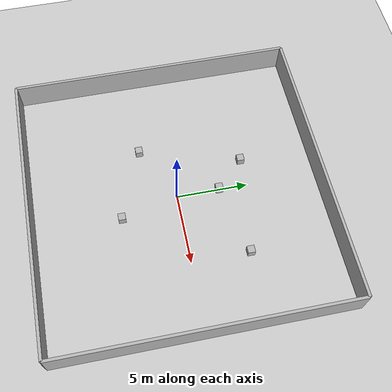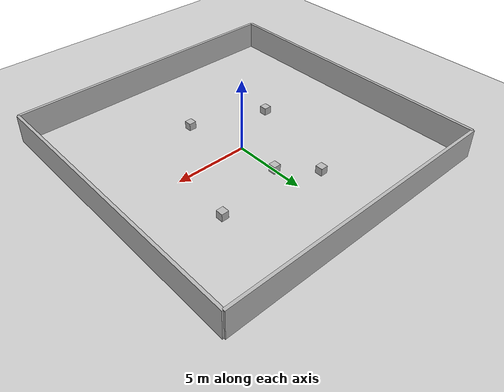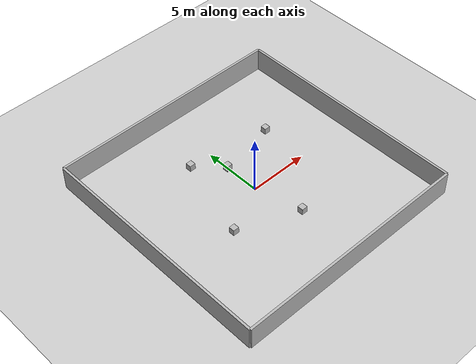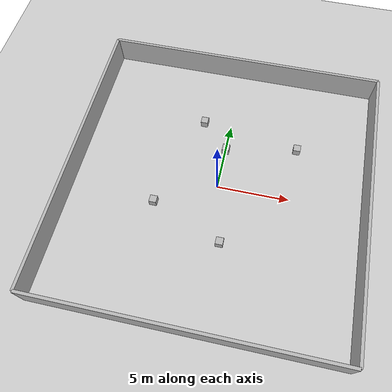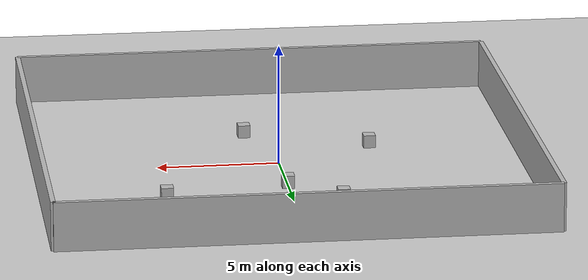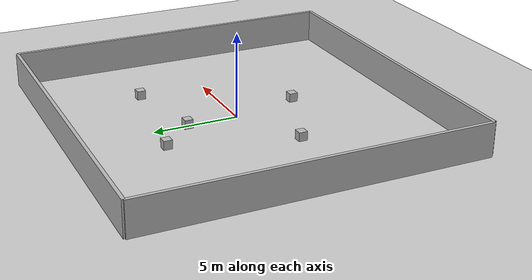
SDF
<?xml version="1.0"?>
<sdf version="1.6">
  <world name="room_with_obstacles">
    <include>
      <uri>model://sun</uri>
    </include>
    <include>
      <uri>model://ground_plane</uri>
    </include>

    <!-- Walls -->
    <model name="wall_north">
      <static>true</static>
      <link name="link">
        <collision name="collision">
          <geometry>
            <box>
              <size>20 0.2 2</size>
            </box>
          </geometry>
        </collision>
        <visual name="visual">
          <geometry>
            <box>
              <size>20 0.2 2</size>
            </box>
          </geometry>
        </visual>
        <pose>0 10 1 0 0 0</pose>
      </link>
    </model>

    <model name="wall_south">
      <static>true</static>
      <link name="link">
        <collision name="collision">
          <geometry>
            <box>
              <size>20 0.2 2</size>
            </box>
          </geometry>
        </collision>
        <visual name="visual">
          <geometry>
            <box>
              <size>20 0.2 2</size>
            </box>
          </geometry>
        </visual>
        <pose>0 -10 1 0 0 0</pose>
      </link>
    </model>

    <model name="wall_east">
      <static>true</static>
      <link name="link">
        <collision name="collision">
          <geometry>
            <box>
              <size>0.2 20 2</size>
            </box>
          </geometry>
        </collision>
        <visual name="visual">
          <geometry>
            <box>
              <size>0.2 20 2</size>
            </box>
          </geometry>
        </visual>
        <pose>10 0 1 0 0 0</pose>
      </link>
    </model>

    <model name="wall_west">
      <static>true</static>
      <link name="link">
        <collision name="collision">
          <geometry>
            <box>
              <size>0.2 20 2</size>
            </box>
          </geometry>
        </collision>
        <visual name="visual">
          <geometry>
            <box>
              <size>0.2 20 2</size>
            </box>
          </geometry>
        </visual>
        <pose>-10 0 1 0 0 0</pose>
      </link>
    </model>

    <!-- Example Obstacle -->
    <model name="obstacle_1">
      <static>true</static>
      <pose>0 3 0 0 0 0</pose>
      <link name="link">
        <collision name="collision">
          <geometry>
            <box>
              <size>0.5 0.5 1</size>
            </box>
          </geometry>
        </collision>
        <visual name="visual">
          <geometry>
            <box>
              <size>0.5 0.5 1</size>
            </box>
          </geometry>
        </visual>
      </link>
    </model>

    <model name="obstacle_2">
      <static>true</static>
      <pose>1 -4 0 0 0 0</pose>
      <link name="link">
        <collision name="collision">
          <geometry>
            <box>
              <size>0.5 0.5 1</size>
            </box>
          </geometry>
        </collision>
        <visual name="visual">
          <geometry>
            <box>
              <size>0.5 0.5 1</size>
            </box>
          </geometry>
        </visual>
      </link>
    </model>

    <model name="obstacle_3">
      <static>true</static>
      <pose>5 4 0 0 0 0</pose>
      <link name="link">
        <collision name="collision">
          <geometry>
            <box>
              <size>0.5 0.5 1</size>
            </box>
          </geometry>
        </collision>
        <visual name="visual">
          <geometry>
            <box>
              <size>0.5 0.5 1</size>
            </box>
          </geometry>
        </visual>
      </link>
    </model>

    <model name="obstacle_4">
      <static>true</static>
      <pose>-4 -2 0 0 0 0</pose>
      <link name="link">
        <collision name="collision">
          <geometry>
            <box>
              <size>0.5 0.5 1</size>
            </box>
          </geometry>
        </collision>
        <visual name="visual">
          <geometry>
            <box>
              <size>0.5 0.5 1</size>
            </box>
          </geometry>
        </visual>
      </link>
    </model>

    <model name="obstacle_5">
      <static>true</static>
      <pose>-2 5 0 0 0 0</pose>
      <link name="link">
        <collision name="collision">
          <geometry>
            <box>
              <size>0.5 0.5 1</size>
            </box>
          </geometry>
        </collision>
        <visual name="visual">
          <geometry>
            <box>
              <size>0.5 0.5 1</size>
            </box>
          </geometry>
        </visual>
      </link>
    </model>

  </world>
</sdf>
